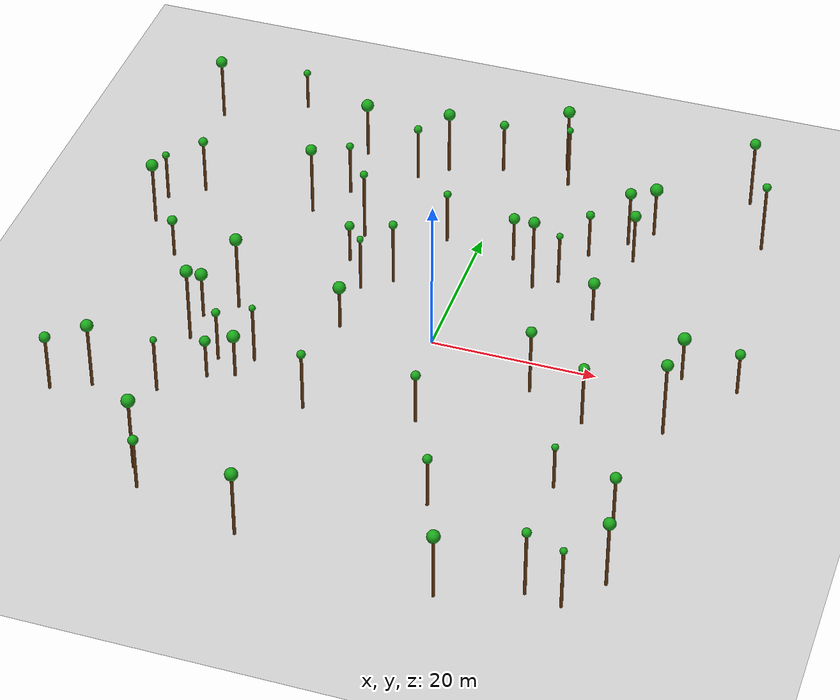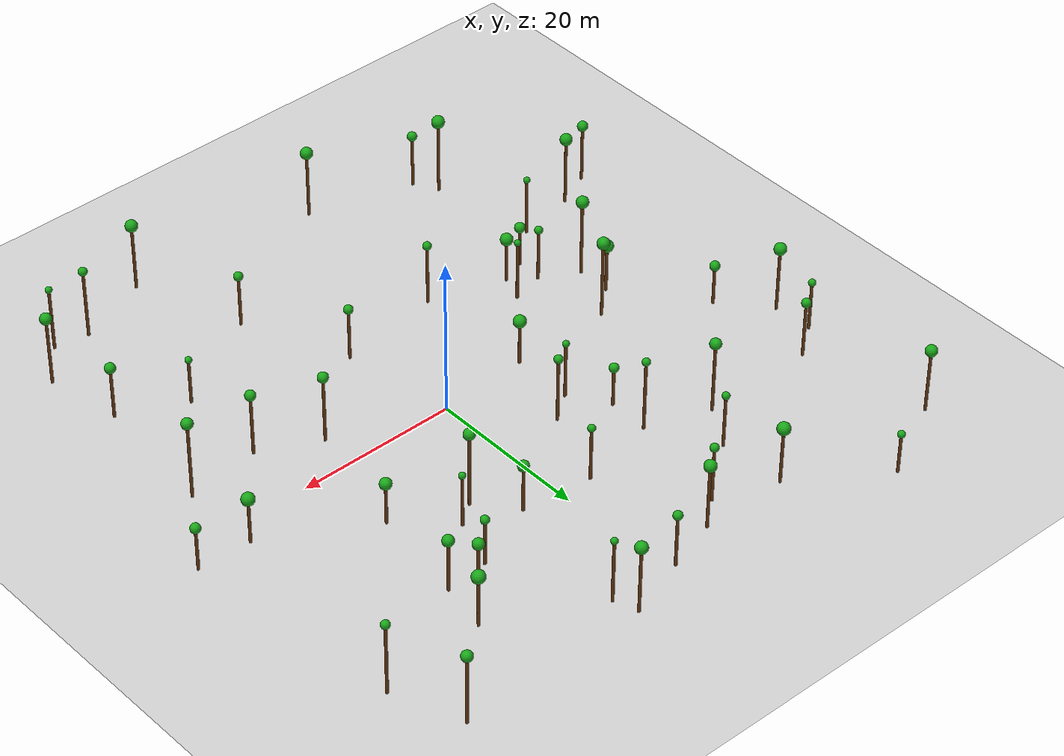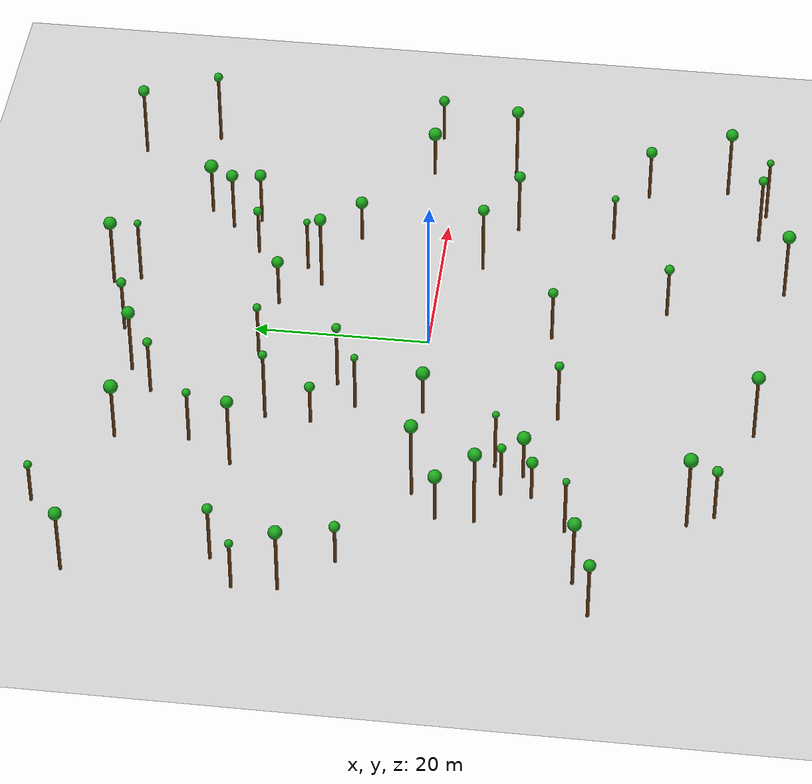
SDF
<sdf version="1.6">
 <world name="forest_world">
  <include><uri>model://sun</uri></include>
  <include><uri>model://ground_plane</uri></include>
  <model name="tree_58">
   <static>true</static>
   <link name="tree_link">
    <collision name="trunk_collision">
     <pose>11.09 15.43 3.41 0 0 0</pose>
     <geometry><cylinder><radius>0.18</radius><length>6.82</length></cylinder></geometry>
    </collision>
    <visual name="trunk_visual">
     <pose>11.09 15.43 3.41 0 0 0</pose>
     <geometry><cylinder><radius>0.18</radius><length>6.82</length></cylinder></geometry>
     <material><ambient>0.35 0.20 0.05 1</ambient><diffuse>0.45 0.25 0.08 1</diffuse></material>
    </visual>
    <visual name="leaf_visual">
     <pose>11.09 15.43 7.03 0 0 0</pose>
     <geometry><sphere><radius>0.41</radius></sphere></geometry>
     <material><ambient>0.05 0.45 0.05 1</ambient><diffuse>0.10 0.65 0.10 1</diffuse></material>
    </visual>
   </link>
  </model>
  <model name="tree_59">
   <static>true</static>
   <link name="tree_link">
    <collision name="trunk_collision">
     <pose>20.60 -8.24 3.95 0 0 0</pose>
     <geometry><cylinder><radius>0.18</radius><length>7.90</length></cylinder></geometry>
    </collision>
    <visual name="trunk_visual">
     <pose>20.60 -8.24 3.95 0 0 0</pose>
     <geometry><cylinder><radius>0.18</radius><length>7.90</length></cylinder></geometry>
     <material><ambient>0.35 0.20 0.05 1</ambient><diffuse>0.45 0.25 0.08 1</diffuse></material>
    </visual>
    <visual name="leaf_visual">
     <pose>20.60 -8.24 8.22 0 0 0</pose>
     <geometry><sphere><radius>0.65</radius></sphere></geometry>
     <material><ambient>0.05 0.45 0.05 1</ambient><diffuse>0.10 0.65 0.10 1</diffuse></material>
    </visual>
   </link>
  </model>
  <model name="tree_60">
   <static>true</static>
   <link name="tree_link">
    <collision name="trunk_collision">
     <pose>-39.54 34.85 4.03 0 0 0</pose>
     <geometry><cylinder><radius>0.18</radius><length>8.06</length></cylinder></geometry>
    </collision>
    <visual name="trunk_visual">
     <pose>-39.54 34.85 4.03 0 0 0</pose>
     <geometry><cylinder><radius>0.18</radius><length>8.06</length></cylinder></geometry>
     <material><ambient>0.35 0.20 0.05 1</ambient><diffuse>0.45 0.25 0.08 1</diffuse></material>
    </visual>
    <visual name="leaf_visual">
     <pose>-39.54 34.85 8.42 0 0 0</pose>
     <geometry><sphere><radius>0.72</radius></sphere></geometry>
     <material><ambient>0.05 0.45 0.05 1</ambient><diffuse>0.10 0.65 0.10 1</diffuse></material>
    </visual>
   </link>
  </model>
  <model name="tree_61">
   <static>true</static>
   <link name="tree_link">
    <collision name="trunk_collision">
     <pose>-10.61 -15.65 3.93 0 0 0</pose>
     <geometry><cylinder><radius>0.18</radius><length>7.85</length></cylinder></geometry>
    </collision>
    <visual name="trunk_visual">
     <pose>-10.61 -15.65 3.93 0 0 0</pose>
     <geometry><cylinder><radius>0.18</radius><length>7.85</length></cylinder></geometry>
     <material><ambient>0.35 0.20 0.05 1</ambient><diffuse>0.45 0.25 0.08 1</diffuse></material>
    </visual>
    <visual name="leaf_visual">
     <pose>-10.61 -15.65 8.12 0 0 0</pose>
     <geometry><sphere><radius>0.52</radius></sphere></geometry>
     <material><ambient>0.05 0.45 0.05 1</ambient><diffuse>0.10 0.65 0.10 1</diffuse></material>
    </visual>
   </link>
  </model>
  <model name="tree_62">
   <static>true</static>
   <link name="tree_link">
    <collision name="trunk_collision">
     <pose>-23.77 -33.81 3.38 0 0 0</pose>
     <geometry><cylinder><radius>0.18</radius><length>6.76</length></cylinder></geometry>
    </collision>
    <visual name="trunk_visual">
     <pose>-23.77 -33.81 3.38 0 0 0</pose>
     <geometry><cylinder><radius>0.18</radius><length>6.76</length></cylinder></geometry>
     <material><ambient>0.35 0.20 0.05 1</ambient><diffuse>0.45 0.25 0.08 1</diffuse></material>
    </visual>
    <visual name="leaf_visual">
     <pose>-23.77 -33.81 7.06 0 0 0</pose>
     <geometry><sphere><radius>0.60</radius></sphere></geometry>
     <material><ambient>0.05 0.45 0.05 1</ambient><diffuse>0.10 0.65 0.10 1</diffuse></material>
    </visual>
   </link>
  </model>
  <model name="tree_63">
   <static>true</static>
   <link name="tree_link">
    <collision name="trunk_collision">
     <pose>-11.27 6.96 3.63 0 0 0</pose>
     <geometry><cylinder><radius>0.18</radius><length>7.27</length></cylinder></geometry>
    </collision>
    <visual name="trunk_visual">
     <pose>-11.27 6.96 3.63 0 0 0</pose>
     <geometry><cylinder><radius>0.18</radius><length>7.27</length></cylinder></geometry>
     <material><ambient>0.35 0.20 0.05 1</ambient><diffuse>0.45 0.25 0.08 1</diffuse></material>
    </visual>
    <visual name="leaf_visual">
     <pose>-11.27 6.96 7.48 0 0 0</pose>
     <geometry><sphere><radius>0.42</radius></sphere></geometry>
     <material><ambient>0.05 0.45 0.05 1</ambient><diffuse>0.10 0.65 0.10 1</diffuse></material>
    </visual>
   </link>
  </model>
  <model name="tree_64">
   <static>true</static>
   <link name="tree_link">
    <collision name="trunk_collision">
     <pose>-35.04 5.94 2.51 0 0 0</pose>
     <geometry><cylinder><radius>0.18</radius><length>5.03</length></cylinder></geometry>
    </collision>
    <visual name="trunk_visual">
     <pose>-35.04 5.94 2.51 0 0 0</pose>
     <geometry><cylinder><radius>0.18</radius><length>5.03</length></cylinder></geometry>
     <material><ambient>0.35 0.20 0.05 1</ambient><diffuse>0.45 0.25 0.08 1</diffuse></material>
    </visual>
    <visual name="leaf_visual">
     <pose>-35.04 5.94 5.34 0 0 0</pose>
     <geometry><sphere><radius>0.61</radius></sphere></geometry>
     <material><ambient>0.05 0.45 0.05 1</ambient><diffuse>0.10 0.65 0.10 1</diffuse></material>
    </visual>
   </link>
  </model>
  <model name="tree_65">
   <static>true</static>
   <link name="tree_link">
    <collision name="trunk_collision">
     <pose>-10.76 -37.42 4.27 0 0 0</pose>
     <geometry><cylinder><radius>0.18</radius><length>8.54</length></cylinder></geometry>
    </collision>
    <visual name="trunk_visual">
     <pose>-10.76 -37.42 4.27 0 0 0</pose>
     <geometry><cylinder><radius>0.18</radius><length>8.54</length></cylinder></geometry>
     <material><ambient>0.35 0.20 0.05 1</ambient><diffuse>0.45 0.25 0.08 1</diffuse></material>
    </visual>
    <visual name="leaf_visual">
     <pose>-10.76 -37.42 8.92 0 0 0</pose>
     <geometry><sphere><radius>0.76</radius></sphere></geometry>
     <material><ambient>0.05 0.45 0.05 1</ambient><diffuse>0.10 0.65 0.10 1</diffuse></material>
    </visual>
   </link>
  </model>
  <model name="tree_66">
   <static>true</static>
   <link name="tree_link">
    <collision name="trunk_collision">
     <pose>-27.75 -17.93 3.69 0 0 0</pose>
     <geometry><cylinder><radius>0.18</radius><length>7.39</length></cylinder></geometry>
    </collision>
    <visual name="trunk_visual">
     <pose>-27.75 -17.93 3.69 0 0 0</pose>
     <geometry><cylinder><radius>0.18</radius><length>7.39</length></cylinder></geometry>
     <material><ambient>0.35 0.20 0.05 1</ambient><diffuse>0.45 0.25 0.08 1</diffuse></material>
    </visual>
    <visual name="leaf_visual">
     <pose>-27.75 -17.93 7.60 0 0 0</pose>
     <geometry><sphere><radius>0.41</radius></sphere></geometry>
     <material><ambient>0.05 0.45 0.05 1</ambient><diffuse>0.10 0.65 0.10 1</diffuse></material>
    </visual>
   </link>
  </model>
  <model name="tree_67">
   <static>true</static>
   <link name="tree_link">
    <collision name="trunk_collision">
     <pose>-29.79 39.96 2.57 0 0 0</pose>
     <geometry><cylinder><radius>0.18</radius><length>5.13</length></cylinder></geometry>
    </collision>
    <visual name="trunk_visual">
     <pose>-29.79 39.96 2.57 0 0 0</pose>
     <geometry><cylinder><radius>0.18</radius><length>5.13</length></cylinder></geometry>
     <material><ambient>0.35 0.20 0.05 1</ambient><diffuse>0.45 0.25 0.08 1</diffuse></material>
    </visual>
    <visual name="leaf_visual">
     <pose>-29.79 39.96 5.36 0 0 0</pose>
     <geometry><sphere><radius>0.46</radius></sphere></geometry>
     <material><ambient>0.05 0.45 0.05 1</ambient><diffuse>0.10 0.65 0.10 1</diffuse></material>
    </visual>
   </link>
  </model>
  <model name="tree_68">
   <static>true</static>
   <link name="tree_link">
    <collision name="trunk_collision">
     <pose>4.69 17.91 2.97 0 0 0</pose>
     <geometry><cylinder><radius>0.18</radius><length>5.94</length></cylinder></geometry>
    </collision>
    <visual name="trunk_visual">
     <pose>4.69 17.91 2.97 0 0 0</pose>
     <geometry><cylinder><radius>0.18</radius><length>5.94</length></cylinder></geometry>
     <material><ambient>0.35 0.20 0.05 1</ambient><diffuse>0.45 0.25 0.08 1</diffuse></material>
    </visual>
    <visual name="leaf_visual">
     <pose>4.69 17.91 6.29 0 0 0</pose>
     <geometry><sphere><radius>0.68</radius></sphere></geometry>
     <material><ambient>0.05 0.45 0.05 1</ambient><diffuse>0.10 0.65 0.10 1</diffuse></material>
    </visual>
   </link>
  </model>
  <model name="tree_69">
   <static>true</static>
   <link name="tree_link">
    <collision name="trunk_collision">
     <pose>-18.82 -9.50 3.86 0 0 0</pose>
     <geometry><cylinder><radius>0.18</radius><length>7.73</length></cylinder></geometry>
    </collision>
    <visual name="trunk_visual">
     <pose>-18.82 -9.50 3.86 0 0 0</pose>
     <geometry><cylinder><radius>0.18</radius><length>7.73</length></cylinder></geometry>
     <material><ambient>0.35 0.20 0.05 1</ambient><diffuse>0.45 0.25 0.08 1</diffuse></material>
    </visual>
    <visual name="leaf_visual">
     <pose>-18.82 -9.50 7.93 0 0 0</pose>
     <geometry><sphere><radius>0.41</radius></sphere></geometry>
     <material><ambient>0.05 0.45 0.05 1</ambient><diffuse>0.10 0.65 0.10 1</diffuse></material>
    </visual>
   </link>
  </model>
  <model name="tree_70">
   <static>true</static>
   <link name="tree_link">
    <collision name="trunk_collision">
     <pose>-39.69 -21.42 3.67 0 0 0</pose>
     <geometry><cylinder><radius>0.18</radius><length>7.35</length></cylinder></geometry>
    </collision>
    <visual name="trunk_visual">
     <pose>-39.69 -21.42 3.67 0 0 0</pose>
     <geometry><cylinder><radius>0.18</radius><length>7.35</length></cylinder></geometry>
     <material><ambient>0.35 0.20 0.05 1</ambient><diffuse>0.45 0.25 0.08 1</diffuse></material>
    </visual>
    <visual name="leaf_visual">
     <pose>-39.69 -21.42 7.68 0 0 0</pose>
     <geometry><sphere><radius>0.66</radius></sphere></geometry>
     <material><ambient>0.05 0.45 0.05 1</ambient><diffuse>0.10 0.65 0.10 1</diffuse></material>
    </visual>
   </link>
  </model>
  <model name="tree_71">
   <static>true</static>
   <link name="tree_link">
    <collision name="trunk_collision">
     <pose>-19.07 32.76 3.60 0 0 0</pose>
     <geometry><cylinder><radius>0.18</radius><length>7.20</length></cylinder></geometry>
    </collision>
    <visual name="trunk_visual">
     <pose>-19.07 32.76 3.60 0 0 0</pose>
     <geometry><cylinder><radius>0.18</radius><length>7.20</length></cylinder></geometry>
     <material><ambient>0.35 0.20 0.05 1</ambient><diffuse>0.45 0.25 0.08 1</diffuse></material>
    </visual>
    <visual name="leaf_visual">
     <pose>-19.07 32.76 7.59 0 0 0</pose>
     <geometry><sphere><radius>0.79</radius></sphere></geometry>
     <material><ambient>0.05 0.45 0.05 1</ambient><diffuse>0.10 0.65 0.10 1</diffuse></material>
    </visual>
   </link>
  </model>
  <model name="tree_72">
   <static>true</static>
   <link name="tree_link">
    <collision name="trunk_collision">
     <pose>29.74 37.66 4.48 0 0 0</pose>
     <geometry><cylinder><radius>0.18</radius><length>8.95</length></cylinder></geometry>
    </collision>
    <visual name="trunk_visual">
     <pose>29.74 37.66 4.48 0 0 0</pose>
     <geometry><cylinder><radius>0.18</radius><length>8.95</length></cylinder></geometry>
     <material><ambient>0.35 0.20 0.05 1</ambient><diffuse>0.45 0.25 0.08 1</diffuse></material>
    </visual>
    <visual name="leaf_visual">
     <pose>29.74 37.66 9.29 0 0 0</pose>
     <geometry><sphere><radius>0.67</radius></sphere></geometry>
     <material><ambient>0.05 0.45 0.05 1</ambient><diffuse>0.10 0.65 0.10 1</diffuse></material>
    </visual>
   </link>
  </model>
  <model name="tree_73">
   <static>true</static>
   <link name="tree_link">
    <collision name="trunk_collision">
     <pose>-14.22 11.57 2.53 0 0 0</pose>
     <geometry><cylinder><radius>0.18</radius><length>5.05</length></cylinder></geometry>
    </collision>
    <visual name="trunk_visual">
     <pose>-14.22 11.57 2.53 0 0 0</pose>
     <geometry><cylinder><radius>0.18</radius><length>5.05</length></cylinder></geometry>
     <material><ambient>0.35 0.20 0.05 1</ambient><diffuse>0.45 0.25 0.08 1</diffuse></material>
    </visual>
    <visual name="leaf_visual">
     <pose>-14.22 11.57 5.34 0 0 0</pose>
     <geometry><sphere><radius>0.58</radius></sphere></geometry>
     <material><ambient>0.05 0.45 0.05 1</ambient><diffuse>0.10 0.65 0.10 1</diffuse></material>
    </visual>
   </link>
  </model>
  <model name="tree_74">
   <static>true</static>
   <link name="tree_link">
    <collision name="trunk_collision">
     <pose>-18.59 24.50 3.46 0 0 0</pose>
     <geometry><cylinder><radius>0.18</radius><length>6.92</length></cylinder></geometry>
    </collision>
    <visual name="trunk_visual">
     <pose>-18.59 24.50 3.46 0 0 0</pose>
     <geometry><cylinder><radius>0.18</radius><length>6.92</length></cylinder></geometry>
     <material><ambient>0.35 0.20 0.05 1</ambient><diffuse>0.45 0.25 0.08 1</diffuse></material>
    </visual>
    <visual name="leaf_visual">
     <pose>-18.59 24.50 7.15 0 0 0</pose>
     <geometry><sphere><radius>0.47</radius></sphere></geometry>
     <material><ambient>0.05 0.45 0.05 1</ambient><diffuse>0.10 0.65 0.10 1</diffuse></material>
    </visual>
   </link>
  </model>
  <model name="tree_75">
   <static>true</static>
   <link name="tree_link">
    <collision name="trunk_collision">
     <pose>7.95 -26.55 3.33 0 0 0</pose>
     <geometry><cylinder><radius>0.18</radius><length>6.66</length></cylinder></geometry>
    </collision>
    <visual name="trunk_visual">
     <pose>7.95 -26.55 3.33 0 0 0</pose>
     <geometry><cylinder><radius>0.18</radius><length>6.66</length></cylinder></geometry>
     <material><ambient>0.35 0.20 0.05 1</ambient><diffuse>0.45 0.25 0.08 1</diffuse></material>
    </visual>
    <visual name="leaf_visual">
     <pose>7.95 -26.55 6.94 0 0 0</pose>
     <geometry><sphere><radius>0.56</radius></sphere></geometry>
     <material><ambient>0.05 0.45 0.05 1</ambient><diffuse>0.10 0.65 0.10 1</diffuse></material>
    </visual>
   </link>
  </model>
  <model name="tree_76">
   <static>true</static>
   <link name="tree_link">
    <collision name="trunk_collision">
     <pose>2.45 -13.81 3.34 0 0 0</pose>
     <geometry><cylinder><radius>0.18</radius><length>6.68</length></cylinder></geometry>
    </collision>
    <visual name="trunk_visual">
     <pose>2.45 -13.81 3.34 0 0 0</pose>
     <geometry><cylinder><radius>0.18</radius><length>6.68</length></cylinder></geometry>
     <material><ambient>0.35 0.20 0.05 1</ambient><diffuse>0.45 0.25 0.08 1</diffuse></material>
    </visual>
    <visual name="leaf_visual">
     <pose>2.45 -13.81 6.96 0 0 0</pose>
     <geometry><sphere><radius>0.57</radius></sphere></geometry>
     <material><ambient>0.05 0.45 0.05 1</ambient><diffuse>0.10 0.65 0.10 1</diffuse></material>
    </visual>
   </link>
  </model>
  <model name="tree_77">
   <static>true</static>
   <link name="tree_link">
    <collision name="trunk_collision">
     <pose>36.31 2.38 2.76 0 0 0</pose>
     <geometry><cylinder><radius>0.18</radius><length>5.52</length></cylinder></geometry>
    </collision>
    <visual name="trunk_visual">
     <pose>36.31 2.38 2.76 0 0 0</pose>
     <geometry><cylinder><radius>0.18</radius><length>5.52</length></cylinder></geometry>
     <material><ambient>0.35 0.20 0.05 1</ambient><diffuse>0.45 0.25 0.08 1</diffuse></material>
    </visual>
    <visual name="leaf_visual">
     <pose>36.31 2.38 5.83 0 0 0</pose>
     <geometry><sphere><radius>0.62</radius></sphere></geometry>
     <material><ambient>0.05 0.45 0.05 1</ambient><diffuse>0.10 0.65 0.10 1</diffuse></material>
    </visual>
   </link>
  </model>
  <model name="tree_78">
   <static>true</static>
   <link name="tree_link">
    <collision name="trunk_collision">
     <pose>-1.63 34.79 3.38 0 0 0</pose>
     <geometry><cylinder><radius>0.18</radius><length>6.76</length></cylinder></geometry>
    </collision>
    <visual name="trunk_visual">
     <pose>-1.63 34.79 3.38 0 0 0</pose>
     <geometry><cylinder><radius>0.18</radius><length>6.76</length></cylinder></geometry>
     <material><ambient>0.35 0.20 0.05 1</ambient><diffuse>0.45 0.25 0.08 1</diffuse></material>
    </visual>
    <visual name="leaf_visual">
     <pose>-1.63 34.79 7.04 0 0 0</pose>
     <geometry><sphere><radius>0.56</radius></sphere></geometry>
     <material><ambient>0.05 0.45 0.05 1</ambient><diffuse>0.10 0.65 0.10 1</diffuse></material>
    </visual>
   </link>
  </model>
  <model name="tree_79">
   <static>true</static>
   <link name="tree_link">
    <collision name="trunk_collision">
     <pose>-39.71 11.49 4.12 0 0 0</pose>
     <geometry><cylinder><radius>0.18</radius><length>8.25</length></cylinder></geometry>
    </collision>
    <visual name="trunk_visual">
     <pose>-39.71 11.49 4.12 0 0 0</pose>
     <geometry><cylinder><radius>0.18</radius><length>8.25</length></cylinder></geometry>
     <material><ambient>0.35 0.20 0.05 1</ambient><diffuse>0.45 0.25 0.08 1</diffuse></material>
    </visual>
    <visual name="leaf_visual">
     <pose>-39.71 11.49 8.62 0 0 0</pose>
     <geometry><sphere><radius>0.76</radius></sphere></geometry>
     <material><ambient>0.05 0.45 0.05 1</ambient><diffuse>0.10 0.65 0.10 1</diffuse></material>
    </visual>
   </link>
  </model>
  <model name="tree_80">
   <static>true</static>
   <link name="tree_link">
    <collision name="trunk_collision">
     <pose>13.38 -4.76 4.31 0 0 0</pose>
     <geometry><cylinder><radius>0.18</radius><length>8.63</length></cylinder></geometry>
    </collision>
    <visual name="trunk_visual">
     <pose>13.38 -4.76 4.31 0 0 0</pose>
     <geometry><cylinder><radius>0.18</radius><length>8.63</length></cylinder></geometry>
     <material><ambient>0.35 0.20 0.05 1</ambient><diffuse>0.45 0.25 0.08 1</diffuse></material>
    </visual>
    <visual name="leaf_visual">
     <pose>13.38 -4.76 8.95 0 0 0</pose>
     <geometry><sphere><radius>0.65</radius></sphere></geometry>
     <material><ambient>0.05 0.45 0.05 1</ambient><diffuse>0.10 0.65 0.10 1</diffuse></material>
    </visual>
   </link>
  </model>
  <model name="tree_81">
   <static>true</static>
   <link name="tree_link">
    <collision name="trunk_collision">
     <pose>29.64 2.71 2.87 0 0 0</pose>
     <geometry><cylinder><radius>0.18</radius><length>5.74</length></cylinder></geometry>
    </collision>
    <visual name="trunk_visual">
     <pose>29.64 2.71 2.87 0 0 0</pose>
     <geometry><cylinder><radius>0.18</radius><length>5.74</length></cylinder></geometry>
     <material><ambient>0.35 0.20 0.05 1</ambient><diffuse>0.45 0.25 0.08 1</diffuse></material>
    </visual>
    <visual name="leaf_visual">
     <pose>29.64 2.71 6.13 0 0 0</pose>
     <geometry><sphere><radius>0.79</radius></sphere></geometry>
     <material><ambient>0.05 0.45 0.05 1</ambient><diffuse>0.10 0.65 0.10 1</diffuse></material>
    </visual>
   </link>
  </model>
  <model name="tree_82">
   <static>true</static>
   <link name="tree_link">
    <collision name="trunk_collision">
     <pose>-21.84 19.42 4.55 0 0 0</pose>
     <geometry><cylinder><radius>0.18</radius><length>9.10</length></cylinder></geometry>
    </collision>
    <visual name="trunk_visual">
     <pose>-21.84 19.42 4.55 0 0 0</pose>
     <geometry><cylinder><radius>0.18</radius><length>9.10</length></cylinder></geometry>
     <material><ambient>0.35 0.20 0.05 1</ambient><diffuse>0.45 0.25 0.08 1</diffuse></material>
    </visual>
    <visual name="leaf_visual">
     <pose>-21.84 19.42 9.45 0 0 0</pose>
     <geometry><sphere><radius>0.70</radius></sphere></geometry>
     <material><ambient>0.05 0.45 0.05 1</ambient><diffuse>0.10 0.65 0.10 1</diffuse></material>
    </visual>
   </link>
  </model>
  <model name="tree_83">
   <static>true</static>
   <link name="tree_link">
    <collision name="trunk_collision">
     <pose>18.71 22.01 3.33 0 0 0</pose>
     <geometry><cylinder><radius>0.18</radius><length>6.66</length></cylinder></geometry>
    </collision>
    <visual name="trunk_visual">
     <pose>18.71 22.01 3.33 0 0 0</pose>
     <geometry><cylinder><radius>0.18</radius><length>6.66</length></cylinder></geometry>
     <material><ambient>0.35 0.20 0.05 1</ambient><diffuse>0.45 0.25 0.08 1</diffuse></material>
    </visual>
    <visual name="leaf_visual">
     <pose>18.71 22.01 7.00 0 0 0</pose>
     <geometry><sphere><radius>0.69</radius></sphere></geometry>
     <material><ambient>0.05 0.45 0.05 1</ambient><diffuse>0.10 0.65 0.10 1</diffuse></material>
    </visual>
   </link>
  </model>
  <model name="tree_84">
   <static>true</static>
   <link name="tree_link">
    <collision name="trunk_collision">
     <pose>33.07 29.21 4.64 0 0 0</pose>
     <geometry><cylinder><radius>0.18</radius><length>9.27</length></cylinder></geometry>
    </collision>
    <visual name="trunk_visual">
     <pose>33.07 29.21 4.64 0 0 0</pose>
     <geometry><cylinder><radius>0.18</radius><length>9.27</length></cylinder></geometry>
     <material><ambient>0.35 0.20 0.05 1</ambient><diffuse>0.45 0.25 0.08 1</diffuse></material>
    </visual>
    <visual name="leaf_visual">
     <pose>33.07 29.21 9.54 0 0 0</pose>
     <geometry><sphere><radius>0.53</radius></sphere></geometry>
     <material><ambient>0.05 0.45 0.05 1</ambient><diffuse>0.10 0.65 0.10 1</diffuse></material>
    </visual>
   </link>
  </model>
  <model name="tree_85">
   <static>true</static>
   <link name="tree_link">
    <collision name="trunk_collision">
     <pose>-8.21 32.72 4.12 0 0 0</pose>
     <geometry><cylinder><radius>0.18</radius><length>8.25</length></cylinder></geometry>
    </collision>
    <visual name="trunk_visual">
     <pose>-8.21 32.72 4.12 0 0 0</pose>
     <geometry><cylinder><radius>0.18</radius><length>8.25</length></cylinder></geometry>
     <material><ambient>0.35 0.20 0.05 1</ambient><diffuse>0.45 0.25 0.08 1</diffuse></material>
    </visual>
    <visual name="leaf_visual">
     <pose>-8.21 32.72 8.62 0 0 0</pose>
     <geometry><sphere><radius>0.74</radius></sphere></geometry>
     <material><ambient>0.05 0.45 0.05 1</ambient><diffuse>0.10 0.65 0.10 1</diffuse></material>
    </visual>
   </link>
  </model>
  <model name="tree_86">
   <static>true</static>
   <link name="tree_link">
    <collision name="trunk_collision">
     <pose>17.28 25.10 3.74 0 0 0</pose>
     <geometry><cylinder><radius>0.18</radius><length>7.48</length></cylinder></geometry>
    </collision>
    <visual name="trunk_visual">
     <pose>17.28 25.10 3.74 0 0 0</pose>
     <geometry><cylinder><radius>0.18</radius><length>7.48</length></cylinder></geometry>
     <material><ambient>0.35 0.20 0.05 1</ambient><diffuse>0.45 0.25 0.08 1</diffuse></material>
    </visual>
    <visual name="leaf_visual">
     <pose>17.28 25.10 7.83 0 0 0</pose>
     <geometry><sphere><radius>0.70</radius></sphere></geometry>
     <material><ambient>0.05 0.45 0.05 1</ambient><diffuse>0.10 0.65 0.10 1</diffuse></material>
    </visual>
   </link>
  </model>
  <model name="tree_87">
   <static>true</static>
   <link name="tree_link">
    <collision name="trunk_collision">
     <pose>-27.43 -8.10 4.90 0 0 0</pose>
     <geometry><cylinder><radius>0.18</radius><length>9.80</length></cylinder></geometry>
    </collision>
    <visual name="trunk_visual">
     <pose>-27.43 -8.10 4.90 0 0 0</pose>
     <geometry><cylinder><radius>0.18</radius><length>9.80</length></cylinder></geometry>
     <material><ambient>0.35 0.20 0.05 1</ambient><diffuse>0.45 0.25 0.08 1</diffuse></material>
    </visual>
    <visual name="leaf_visual">
     <pose>-27.43 -8.10 10.18 0 0 0</pose>
     <geometry><sphere><radius>0.76</radius></sphere></geometry>
     <material><ambient>0.05 0.45 0.05 1</ambient><diffuse>0.10 0.65 0.10 1</diffuse></material>
    </visual>
   </link>
  </model>
  <model name="tree_88">
   <static>true</static>
   <link name="tree_link">
    <collision name="trunk_collision">
     <pose>29.85 -7.07 4.96 0 0 0</pose>
     <geometry><cylinder><radius>0.18</radius><length>9.92</length></cylinder></geometry>
    </collision>
    <visual name="trunk_visual">
     <pose>29.85 -7.07 4.96 0 0 0</pose>
     <geometry><cylinder><radius>0.18</radius><length>9.92</length></cylinder></geometry>
     <material><ambient>0.35 0.20 0.05 1</ambient><diffuse>0.45 0.25 0.08 1</diffuse></material>
    </visual>
    <visual name="leaf_visual">
     <pose>29.85 -7.07 10.27 0 0 0</pose>
     <geometry><sphere><radius>0.70</radius></sphere></geometry>
     <material><ambient>0.05 0.45 0.05 1</ambient><diffuse>0.10 0.65 0.10 1</diffuse></material>
    </visual>
   </link>
  </model>
  <model name="tree_89">
   <static>true</static>
   <link name="tree_link">
    <collision name="trunk_collision">
     <pose>-14.07 16.69 4.61 0 0 0</pose>
     <geometry><cylinder><radius>0.18</radius><length>9.21</length></cylinder></geometry>
    </collision>
    <visual name="trunk_visual">
     <pose>-14.07 16.69 4.61 0 0 0</pose>
     <geometry><cylinder><radius>0.18</radius><length>9.21</length></cylinder></geometry>
     <material><ambient>0.35 0.20 0.05 1</ambient><diffuse>0.45 0.25 0.08 1</diffuse></material>
    </visual>
    <visual name="leaf_visual">
     <pose>-14.07 16.69 9.46 0 0 0</pose>
     <geometry><sphere><radius>0.49</radius></sphere></geometry>
     <material><ambient>0.05 0.45 0.05 1</ambient><diffuse>0.10 0.65 0.10 1</diffuse></material>
    </visual>
   </link>
  </model>
  <model name="tree_90">
   <static>true</static>
   <link name="tree_link">
    <collision name="trunk_collision">
     <pose>-25.36 -30.91 4.79 0 0 0</pose>
     <geometry><cylinder><radius>0.18</radius><length>9.57</length></cylinder></geometry>
    </collision>
    <visual name="trunk_visual">
     <pose>-25.36 -30.91 4.79 0 0 0</pose>
     <geometry><cylinder><radius>0.18</radius><length>9.57</length></cylinder></geometry>
     <material><ambient>0.35 0.20 0.05 1</ambient><diffuse>0.45 0.25 0.08 1</diffuse></material>
    </visual>
    <visual name="leaf_visual">
     <pose>-25.36 -30.91 9.97 0 0 0</pose>
     <geometry><sphere><radius>0.80</radius></sphere></geometry>
     <material><ambient>0.05 0.45 0.05 1</ambient><diffuse>0.10 0.65 0.10 1</diffuse></material>
    </visual>
   </link>
  </model>
  <model name="tree_91">
   <static>true</static>
   <link name="tree_link">
    <collision name="trunk_collision">
     <pose>-24.01 -0.89 4.92 0 0 0</pose>
     <geometry><cylinder><radius>0.18</radius><length>9.85</length></cylinder></geometry>
    </collision>
    <visual name="trunk_visual">
     <pose>-24.01 -0.89 4.92 0 0 0</pose>
     <geometry><cylinder><radius>0.18</radius><length>9.85</length></cylinder></geometry>
     <material><ambient>0.35 0.20 0.05 1</ambient><diffuse>0.45 0.25 0.08 1</diffuse></material>
    </visual>
    <visual name="leaf_visual">
     <pose>-24.01 -0.89 10.23 0 0 0</pose>
     <geometry><sphere><radius>0.76</radius></sphere></geometry>
     <material><ambient>0.05 0.45 0.05 1</ambient><diffuse>0.10 0.65 0.10 1</diffuse></material>
    </visual>
   </link>
  </model>
  <model name="tree_92">
   <static>true</static>
   <link name="tree_link">
    <collision name="trunk_collision">
     <pose>26.34 -37.05 4.08 0 0 0</pose>
     <geometry><cylinder><radius>0.18</radius><length>8.15</length></cylinder></geometry>
    </collision>
    <visual name="trunk_visual">
     <pose>26.34 -37.05 4.08 0 0 0</pose>
     <geometry><cylinder><radius>0.18</radius><length>8.15</length></cylinder></geometry>
     <material><ambient>0.35 0.20 0.05 1</ambient><diffuse>0.45 0.25 0.08 1</diffuse></material>
    </visual>
    <visual name="leaf_visual">
     <pose>26.34 -37.05 8.36 0 0 0</pose>
     <geometry><sphere><radius>0.42</radius></sphere></geometry>
     <material><ambient>0.05 0.45 0.05 1</ambient><diffuse>0.10 0.65 0.10 1</diffuse></material>
    </visual>
   </link>
  </model>
  <model name="tree_93">
   <static>true</static>
   <link name="tree_link">
    <collision name="trunk_collision">
     <pose>-11.28 -0.64 2.79 0 0 0</pose>
     <geometry><cylinder><radius>0.18</radius><length>5.58</length></cylinder></geometry>
    </collision>
    <visual name="trunk_visual">
     <pose>-11.28 -0.64 2.79 0 0 0</pose>
     <geometry><cylinder><radius>0.18</radius><length>5.58</length></cylinder></geometry>
     <material><ambient>0.35 0.20 0.05 1</ambient><diffuse>0.45 0.25 0.08 1</diffuse></material>
    </visual>
    <visual name="leaf_visual">
     <pose>-11.28 -0.64 5.97 0 0 0</pose>
     <geometry><sphere><radius>0.78</radius></sphere></geometry>
     <material><ambient>0.05 0.45 0.05 1</ambient><diffuse>0.10 0.65 0.10 1</diffuse></material>
    </visual>
   </link>
  </model>
  <model name="tree_94">
   <static>true</static>
   <link name="tree_link">
    <collision name="trunk_collision">
     <pose>-36.09 19.29 3.60 0 0 0</pose>
     <geometry><cylinder><radius>0.18</radius><length>7.21</length></cylinder></geometry>
    </collision>
    <visual name="trunk_visual">
     <pose>-36.09 19.29 3.60 0 0 0</pose>
     <geometry><cylinder><radius>0.18</radius><length>7.21</length></cylinder></geometry>
     <material><ambient>0.35 0.20 0.05 1</ambient><diffuse>0.45 0.25 0.08 1</diffuse></material>
    </visual>
    <visual name="leaf_visual">
     <pose>-36.09 19.29 7.50 0 0 0</pose>
     <geometry><sphere><radius>0.58</radius></sphere></geometry>
     <material><ambient>0.05 0.45 0.05 1</ambient><diffuse>0.10 0.65 0.10 1</diffuse></material>
    </visual>
   </link>
  </model>
  <model name="tree_95">
   <static>true</static>
   <link name="tree_link">
    <collision name="trunk_collision">
     <pose>-22.97 -10.55 3.39 0 0 0</pose>
     <geometry><cylinder><radius>0.18</radius><length>6.77</length></cylinder></geometry>
    </collision>
    <visual name="trunk_visual">
     <pose>-22.97 -10.55 3.39 0 0 0</pose>
     <geometry><cylinder><radius>0.18</radius><length>6.77</length></cylinder></geometry>
     <material><ambient>0.35 0.20 0.05 1</ambient><diffuse>0.45 0.25 0.08 1</diffuse></material>
    </visual>
    <visual name="leaf_visual">
     <pose>-22.97 -10.55 7.03 0 0 0</pose>
     <geometry><sphere><radius>0.51</radius></sphere></geometry>
     <material><ambient>0.05 0.45 0.05 1</ambient><diffuse>0.10 0.65 0.10 1</diffuse></material>
    </visual>
   </link>
  </model>
  <model name="tree_96">
   <static>true</static>
   <link name="tree_link">
    <collision name="trunk_collision">
     <pose>22.09 -36.38 4.44 0 0 0</pose>
     <geometry><cylinder><radius>0.18</radius><length>8.87</length></cylinder></geometry>
    </collision>
    <visual name="trunk_visual">
     <pose>22.09 -36.38 4.44 0 0 0</pose>
     <geometry><cylinder><radius>0.18</radius><length>8.87</length></cylinder></geometry>
     <material><ambient>0.35 0.20 0.05 1</ambient><diffuse>0.45 0.25 0.08 1</diffuse></material>
    </visual>
    <visual name="leaf_visual">
     <pose>22.09 -36.38 9.14 0 0 0</pose>
     <geometry><sphere><radius>0.54</radius></sphere></geometry>
     <material><ambient>0.05 0.45 0.05 1</ambient><diffuse>0.10 0.65 0.10 1</diffuse></material>
    </visual>
   </link>
  </model>
  <model name="tree_97">
   <static>true</static>
   <link name="tree_link">
    <collision name="trunk_collision">
     <pose>-39.98 16.41 3.18 0 0 0</pose>
     <geometry><cylinder><radius>0.18</radius><length>6.35</length></cylinder></geometry>
    </collision>
    <visual name="trunk_visual">
     <pose>-39.98 16.41 3.18 0 0 0</pose>
     <geometry><cylinder><radius>0.18</radius><length>6.35</length></cylinder></geometry>
     <material><ambient>0.35 0.20 0.05 1</ambient><diffuse>0.45 0.25 0.08 1</diffuse></material>
    </visual>
    <visual name="leaf_visual">
     <pose>-39.98 16.41 6.59 0 0 0</pose>
     <geometry><sphere><radius>0.46</radius></sphere></geometry>
     <material><ambient>0.05 0.45 0.05 1</ambient><diffuse>0.10 0.65 0.10 1</diffuse></material>
    </visual>
   </link>
  </model>
  <model name="tree_98">
   <static>true</static>
   <link name="tree_link">
    <collision name="trunk_collision">
     <pose>-23.10 -13.91 2.53 0 0 0</pose>
     <geometry><cylinder><radius>0.18</radius><length>5.06</length></cylinder></geometry>
    </collision>
    <visual name="trunk_visual">
     <pose>-23.10 -13.91 2.53 0 0 0</pose>
     <geometry><cylinder><radius>0.18</radius><length>5.06</length></cylinder></geometry>
     <material><ambient>0.35 0.20 0.05 1</ambient><diffuse>0.45 0.25 0.08 1</diffuse></material>
    </visual>
    <visual name="leaf_visual">
     <pose>-23.10 -13.91 5.38 0 0 0</pose>
     <geometry><sphere><radius>0.65</radius></sphere></geometry>
     <material><ambient>0.05 0.45 0.05 1</ambient><diffuse>0.10 0.65 0.10 1</diffuse></material>
    </visual>
   </link>
  </model>
  <model name="tree_99">
   <static>true</static>
   <link name="tree_link">
    <collision name="trunk_collision">
     <pose>-35.22 -19.42 4.31 0 0 0</pose>
     <geometry><cylinder><radius>0.18</radius><length>8.62</length></cylinder></geometry>
    </collision>
    <visual name="trunk_visual">
     <pose>-35.22 -19.42 4.31 0 0 0</pose>
     <geometry><cylinder><radius>0.18</radius><length>8.62</length></cylinder></geometry>
     <material><ambient>0.35 0.20 0.05 1</ambient><diffuse>0.45 0.25 0.08 1</diffuse></material>
    </visual>
    <visual name="leaf_visual">
     <pose>-35.22 -19.42 8.99 0 0 0</pose>
     <geometry><sphere><radius>0.75</radius></sphere></geometry>
     <material><ambient>0.05 0.45 0.05 1</ambient><diffuse>0.10 0.65 0.10 1</diffuse></material>
    </visual>
   </link>
  </model>
  <model name="tree_100">
   <static>true</static>
   <link name="tree_link">
    <collision name="trunk_collision">
     <pose>20.48 -19.46 2.92 0 0 0</pose>
     <geometry><cylinder><radius>0.18</radius><length>5.85</length></cylinder></geometry>
    </collision>
    <visual name="trunk_visual">
     <pose>20.48 -19.46 2.92 0 0 0</pose>
     <geometry><cylinder><radius>0.18</radius><length>5.85</length></cylinder></geometry>
     <material><ambient>0.35 0.20 0.05 1</ambient><diffuse>0.45 0.25 0.08 1</diffuse></material>
    </visual>
    <visual name="leaf_visual">
     <pose>20.48 -19.46 6.06 0 0 0</pose>
     <geometry><sphere><radius>0.42</radius></sphere></geometry>
     <material><ambient>0.05 0.45 0.05 1</ambient><diffuse>0.10 0.65 0.10 1</diffuse></material>
    </visual>
   </link>
  </model>
  <model name="tree_101">
   <static>true</static>
   <link name="tree_link">
    <collision name="trunk_collision">
     <pose>8.39 13.46 4.80 0 0 0</pose>
     <geometry><cylinder><radius>0.18</radius><length>9.59</length></cylinder></geometry>
    </collision>
    <visual name="trunk_visual">
     <pose>8.39 13.46 4.80 0 0 0</pose>
     <geometry><cylinder><radius>0.18</radius><length>9.59</length></cylinder></geometry>
     <material><ambient>0.35 0.20 0.05 1</ambient><diffuse>0.45 0.25 0.08 1</diffuse></material>
    </visual>
    <visual name="leaf_visual">
     <pose>8.39 13.46 9.94 0 0 0</pose>
     <geometry><sphere><radius>0.70</radius></sphere></geometry>
     <material><ambient>0.05 0.45 0.05 1</ambient><diffuse>0.10 0.65 0.10 1</diffuse></material>
    </visual>
   </link>
  </model>
  <model name="tree_102">
   <static>true</static>
   <link name="tree_link">
    <collision name="trunk_collision">
     <pose>-7.93 9.40 4.19 0 0 0</pose>
     <geometry><cylinder><radius>0.18</radius><length>8.38</length></cylinder></geometry>
    </collision>
    <visual name="trunk_visual">
     <pose>-7.93 9.40 4.19 0 0 0</pose>
     <geometry><cylinder><radius>0.18</radius><length>8.38</length></cylinder></geometry>
     <material><ambient>0.35 0.20 0.05 1</ambient><diffuse>0.45 0.25 0.08 1</diffuse></material>
    </visual>
    <visual name="leaf_visual">
     <pose>-7.93 9.40 8.65 0 0 0</pose>
     <geometry><sphere><radius>0.53</radius></sphere></geometry>
     <material><ambient>0.05 0.45 0.05 1</ambient><diffuse>0.10 0.65 0.10 1</diffuse></material>
    </visual>
   </link>
  </model>
  <model name="tree_103">
   <static>true</static>
   <link name="tree_link">
    <collision name="trunk_collision">
     <pose>13.24 21.49 2.99 0 0 0</pose>
     <geometry><cylinder><radius>0.18</radius><length>5.99</length></cylinder></geometry>
    </collision>
    <visual name="trunk_visual">
     <pose>13.24 21.49 2.99 0 0 0</pose>
     <geometry><cylinder><radius>0.18</radius><length>5.99</length></cylinder></geometry>
     <material><ambient>0.35 0.20 0.05 1</ambient><diffuse>0.45 0.25 0.08 1</diffuse></material>
    </visual>
    <visual name="leaf_visual">
     <pose>13.24 21.49 6.25 0 0 0</pose>
     <geometry><sphere><radius>0.53</radius></sphere></geometry>
     <material><ambient>0.05 0.45 0.05 1</ambient><diffuse>0.10 0.65 0.10 1</diffuse></material>
    </visual>
   </link>
  </model>
  <model name="tree_104">
   <static>true</static>
   <link name="tree_link">
    <collision name="trunk_collision">
     <pose>19.81 28.00 3.24 0 0 0</pose>
     <geometry><cylinder><radius>0.18</radius><length>6.49</length></cylinder></geometry>
    </collision>
    <visual name="trunk_visual">
     <pose>19.81 28.00 3.24 0 0 0</pose>
     <geometry><cylinder><radius>0.18</radius><length>6.49</length></cylinder></geometry>
     <material><ambient>0.35 0.20 0.05 1</ambient><diffuse>0.45 0.25 0.08 1</diffuse></material>
    </visual>
    <visual name="leaf_visual">
     <pose>19.81 28.00 6.88 0 0 0</pose>
     <geometry><sphere><radius>0.80</radius></sphere></geometry>
     <material><ambient>0.05 0.45 0.05 1</ambient><diffuse>0.10 0.65 0.10 1</diffuse></material>
    </visual>
   </link>
  </model>
  <model name="tree_105">
   <static>true</static>
   <link name="tree_link">
    <collision name="trunk_collision">
     <pose>-11.48 30.04 3.62 0 0 0</pose>
     <geometry><cylinder><radius>0.18</radius><length>7.23</length></cylinder></geometry>
    </collision>
    <visual name="trunk_visual">
     <pose>-11.48 30.04 3.62 0 0 0</pose>
     <geometry><cylinder><radius>0.18</radius><length>7.23</length></cylinder></geometry>
     <material><ambient>0.35 0.20 0.05 1</ambient><diffuse>0.45 0.25 0.08 1</diffuse></material>
    </visual>
    <visual name="leaf_visual">
     <pose>-11.48 30.04 7.49 0 0 0</pose>
     <geometry><sphere><radius>0.52</radius></sphere></geometry>
     <material><ambient>0.05 0.45 0.05 1</ambient><diffuse>0.10 0.65 0.10 1</diffuse></material>
    </visual>
   </link>
  </model>
  <model name="tree_106">
   <static>true</static>
   <link name="tree_link">
    <collision name="trunk_collision">
     <pose>-20.02 -12.72 2.77 0 0 0</pose>
     <geometry><cylinder><radius>0.18</radius><length>5.55</length></cylinder></geometry>
    </collision>
    <visual name="trunk_visual">
     <pose>-20.02 -12.72 2.77 0 0 0</pose>
     <geometry><cylinder><radius>0.18</radius><length>5.55</length></cylinder></geometry>
     <material><ambient>0.35 0.20 0.05 1</ambient><diffuse>0.45 0.25 0.08 1</diffuse></material>
    </visual>
    <visual name="leaf_visual">
     <pose>-20.02 -12.72 5.93 0 0 0</pose>
     <geometry><sphere><radius>0.77</radius></sphere></geometry>
     <material><ambient>0.05 0.45 0.05 1</ambient><diffuse>0.10 0.65 0.10 1</diffuse></material>
    </visual>
   </link>
  </model>
  <model name="tree_107">
   <static>true</static>
   <link name="tree_link">
    <collision name="trunk_collision">
     <pose>6.03 37.37 4.32 0 0 0</pose>
     <geometry><cylinder><radius>0.18</radius><length>8.64</length></cylinder></geometry>
    </collision>
    <visual name="trunk_visual">
     <pose>6.03 37.37 4.32 0 0 0</pose>
     <geometry><cylinder><radius>0.18</radius><length>8.64</length></cylinder></geometry>
     <material><ambient>0.35 0.20 0.05 1</ambient><diffuse>0.45 0.25 0.08 1</diffuse></material>
    </visual>
    <visual name="leaf_visual">
     <pose>6.03 37.37 9.01 0 0 0</pose>
     <geometry><sphere><radius>0.75</radius></sphere></geometry>
     <material><ambient>0.05 0.45 0.05 1</ambient><diffuse>0.10 0.65 0.10 1</diffuse></material>
    </visual>
   </link>
  </model>
  <model name="tree_108">
   <static>true</static>
   <link name="tree_link">
    <collision name="trunk_collision">
     <pose>7.00 34.39 4.12 0 0 0</pose>
     <geometry><cylinder><radius>0.18</radius><length>8.24</length></cylinder></geometry>
    </collision>
    <visual name="trunk_visual">
     <pose>7.00 34.39 4.12 0 0 0</pose>
     <geometry><cylinder><radius>0.18</radius><length>8.24</length></cylinder></geometry>
     <material><ambient>0.35 0.20 0.05 1</ambient><diffuse>0.45 0.25 0.08 1</diffuse></material>
    </visual>
    <visual name="leaf_visual">
     <pose>7.00 34.39 8.45 0 0 0</pose>
     <geometry><sphere><radius>0.42</radius></sphere></geometry>
     <material><ambient>0.05 0.45 0.05 1</ambient><diffuse>0.10 0.65 0.10 1</diffuse></material>
    </visual>
   </link>
  </model>
  <model name="tree_109">
   <static>true</static>
   <link name="tree_link">
    <collision name="trunk_collision">
     <pose>16.92 9.85 2.60 0 0 0</pose>
     <geometry><cylinder><radius>0.18</radius><length>5.21</length></cylinder></geometry>
    </collision>
    <visual name="trunk_visual">
     <pose>16.92 9.85 2.60 0 0 0</pose>
     <geometry><cylinder><radius>0.18</radius><length>5.21</length></cylinder></geometry>
     <material><ambient>0.35 0.20 0.05 1</ambient><diffuse>0.45 0.25 0.08 1</diffuse></material>
    </visual>
    <visual name="leaf_visual">
     <pose>16.92 9.85 5.57 0 0 0</pose>
     <geometry><sphere><radius>0.72</radius></sphere></geometry>
     <material><ambient>0.05 0.45 0.05 1</ambient><diffuse>0.10 0.65 0.10 1</diffuse></material>
    </visual>
   </link>
  </model>
  <model name="tree_110">
   <static>true</static>
   <link name="tree_link">
    <collision name="trunk_collision">
     <pose>30.03 -32.34 4.36 0 0 0</pose>
     <geometry><cylinder><radius>0.18</radius><length>8.73</length></cylinder></geometry>
    </collision>
    <visual name="trunk_visual">
     <pose>30.03 -32.34 4.36 0 0 0</pose>
     <geometry><cylinder><radius>0.18</radius><length>8.73</length></cylinder></geometry>
     <material><ambient>0.35 0.20 0.05 1</ambient><diffuse>0.45 0.25 0.08 1</diffuse></material>
    </visual>
    <visual name="leaf_visual">
     <pose>30.03 -32.34 9.09 0 0 0</pose>
     <geometry><sphere><radius>0.72</radius></sphere></geometry>
     <material><ambient>0.05 0.45 0.05 1</ambient><diffuse>0.10 0.65 0.10 1</diffuse></material>
    </visual>
   </link>
  </model>
  <model name="tree_111">
   <static>true</static>
   <link name="tree_link">
    <collision name="trunk_collision">
     <pose>-4.11 18.91 3.47 0 0 0</pose>
     <geometry><cylinder><radius>0.18</radius><length>6.94</length></cylinder></geometry>
    </collision>
    <visual name="trunk_visual">
     <pose>-4.11 18.91 3.47 0 0 0</pose>
     <geometry><cylinder><radius>0.18</radius><length>6.94</length></cylinder></geometry>
     <material><ambient>0.35 0.20 0.05 1</ambient><diffuse>0.45 0.25 0.08 1</diffuse></material>
    </visual>
    <visual name="leaf_visual">
     <pose>-4.11 18.91 7.17 0 0 0</pose>
     <geometry><sphere><radius>0.47</radius></sphere></geometry>
     <material><ambient>0.05 0.45 0.05 1</ambient><diffuse>0.10 0.65 0.10 1</diffuse></material>
    </visual>
   </link>
  </model>
  <model name="tree_112">
   <static>true</static>
   <link name="tree_link">
    <collision name="trunk_collision">
     <pose>12.86 -39.75 4.26 0 0 0</pose>
     <geometry><cylinder><radius>0.18</radius><length>8.53</length></cylinder></geometry>
    </collision>
    <visual name="trunk_visual">
     <pose>12.86 -39.75 4.26 0 0 0</pose>
     <geometry><cylinder><radius>0.18</radius><length>8.53</length></cylinder></geometry>
     <material><ambient>0.35 0.20 0.05 1</ambient><diffuse>0.45 0.25 0.08 1</diffuse></material>
    </visual>
    <visual name="leaf_visual">
     <pose>12.86 -39.75 8.91 0 0 0</pose>
     <geometry><sphere><radius>0.76</radius></sphere></geometry>
     <material><ambient>0.05 0.45 0.05 1</ambient><diffuse>0.10 0.65 0.10 1</diffuse></material>
    </visual>
   </link>
  </model>
  <model name="tree_113">
   <static>true</static>
   <link name="tree_link">
    <collision name="trunk_collision">
     <pose>-27.42 -3.84 3.00 0 0 0</pose>
     <geometry><cylinder><radius>0.18</radius><length>6.00</length></cylinder></geometry>
    </collision>
    <visual name="trunk_visual">
     <pose>-27.42 -3.84 3.00 0 0 0</pose>
     <geometry><cylinder><radius>0.18</radius><length>6.00</length></cylinder></geometry>
     <material><ambient>0.35 0.20 0.05 1</ambient><diffuse>0.45 0.25 0.08 1</diffuse></material>
    </visual>
    <visual name="leaf_visual">
     <pose>-27.42 -3.84 6.38 0 0 0</pose>
     <geometry><sphere><radius>0.77</radius></sphere></geometry>
     <material><ambient>0.05 0.45 0.05 1</ambient><diffuse>0.10 0.65 0.10 1</diffuse></material>
    </visual>
   </link>
  </model>
  <model name="tree_114">
   <static>true</static>
   <link name="tree_link">
    <collision name="trunk_collision">
     <pose>28.33 -23.09 3.31 0 0 0</pose>
     <geometry><cylinder><radius>0.18</radius><length>6.62</length></cylinder></geometry>
    </collision>
    <visual name="trunk_visual">
     <pose>28.33 -23.09 3.31 0 0 0</pose>
     <geometry><cylinder><radius>0.18</radius><length>6.62</length></cylinder></geometry>
     <material><ambient>0.35 0.20 0.05 1</ambient><diffuse>0.45 0.25 0.08 1</diffuse></material>
    </visual>
    <visual name="leaf_visual">
     <pose>28.33 -23.09 6.94 0 0 0</pose>
     <geometry><sphere><radius>0.66</radius></sphere></geometry>
     <material><ambient>0.05 0.45 0.05 1</ambient><diffuse>0.10 0.65 0.10 1</diffuse></material>
    </visual>
   </link>
  </model>
 </world>
</sdf>
